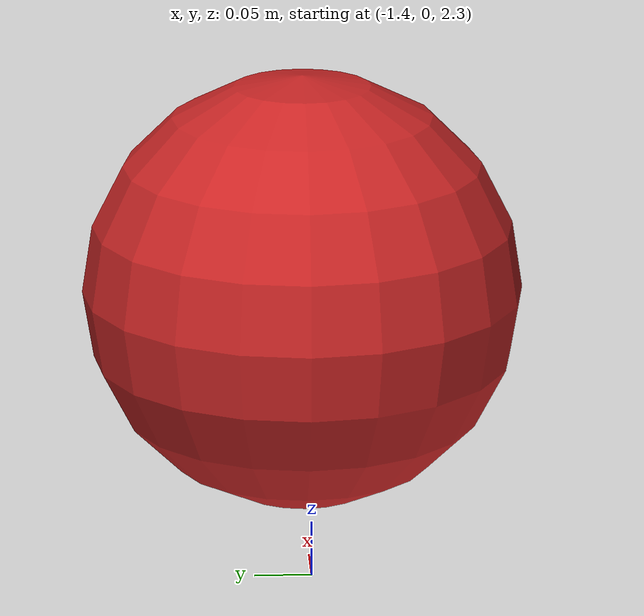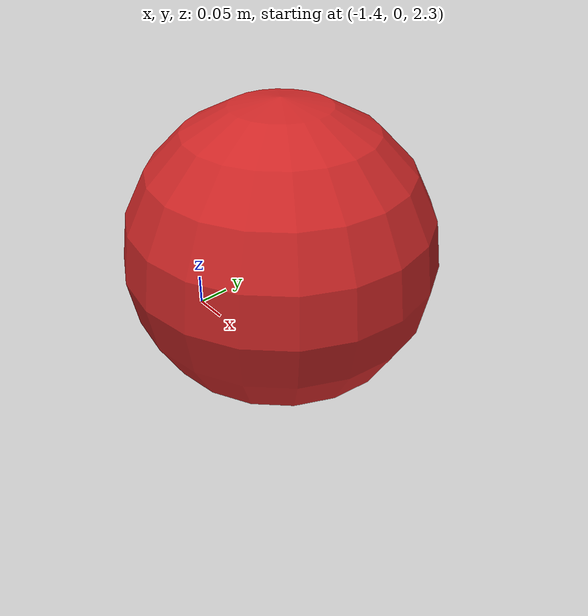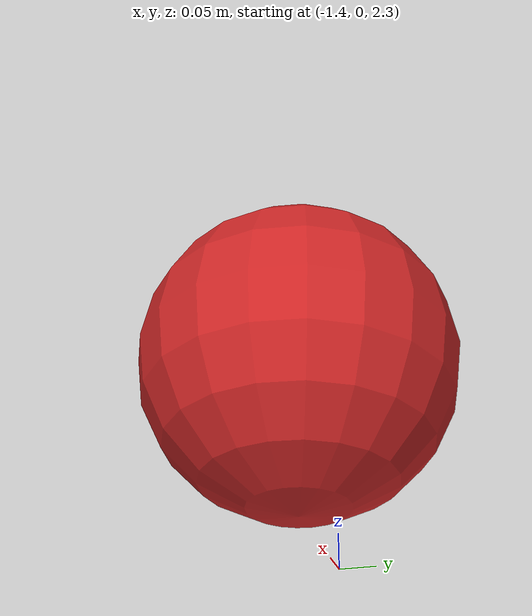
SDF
<?xml version='1.0'?>
<sdf version='1.5'>

  <model name='bin_cover'>
    <pose>0 0 0 0 0 0</pose>
    <self_collide> 0 </self_collide>
    <static> 1</static>

    <link name='red_buoy'>
      <pose>-1.2 0 2.5 0 0 0</pose>
      <visual name='red_vis'>
        <geometry>
          <sphere><radius>0.2</radius></sphere>
        </geometry>
        <material>
          <script>
            <uri>file://media/materials/scripts/gazebo.material</uri>
            <name>Gazebo/Red</name>
          </script>
          <diffuse>0.6 0 0 1</diffuse>
        </material>
      </visual>
      <collision name='red_collide'>
        <pose>-1.2 0 2.5 0 0 0</pose>
        <geometry>
          <sphere><radius>0.11</radius></sphere>
        </geometry>
      </collision>
    </link>

  </model>
</sdf>
